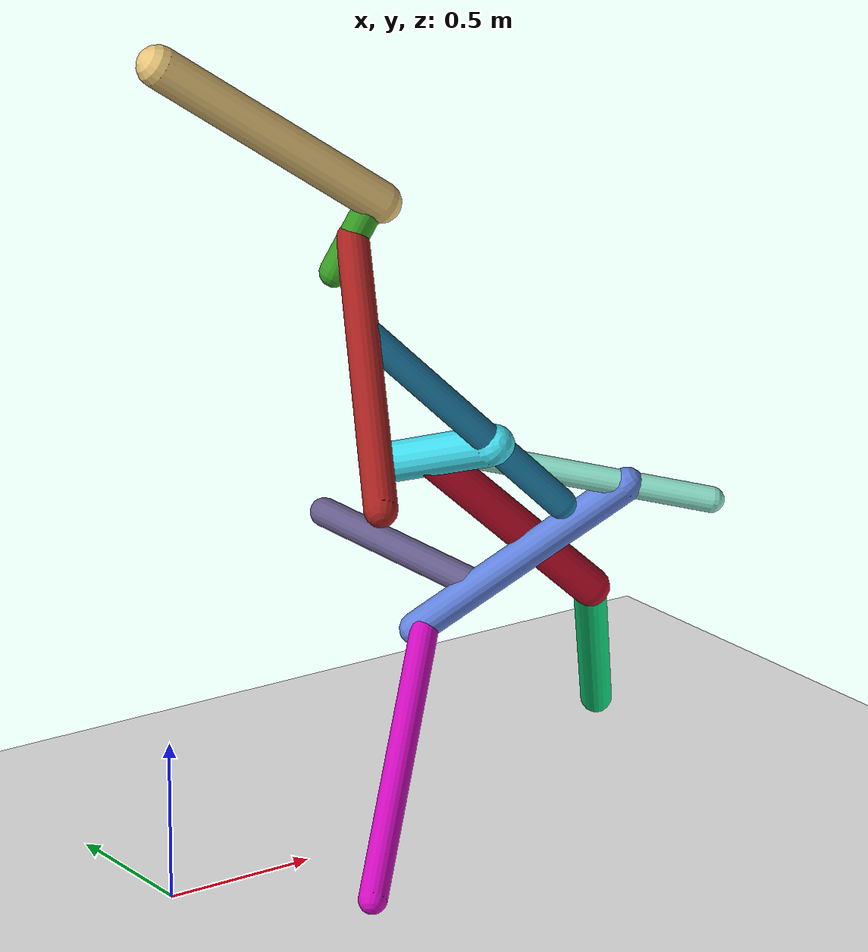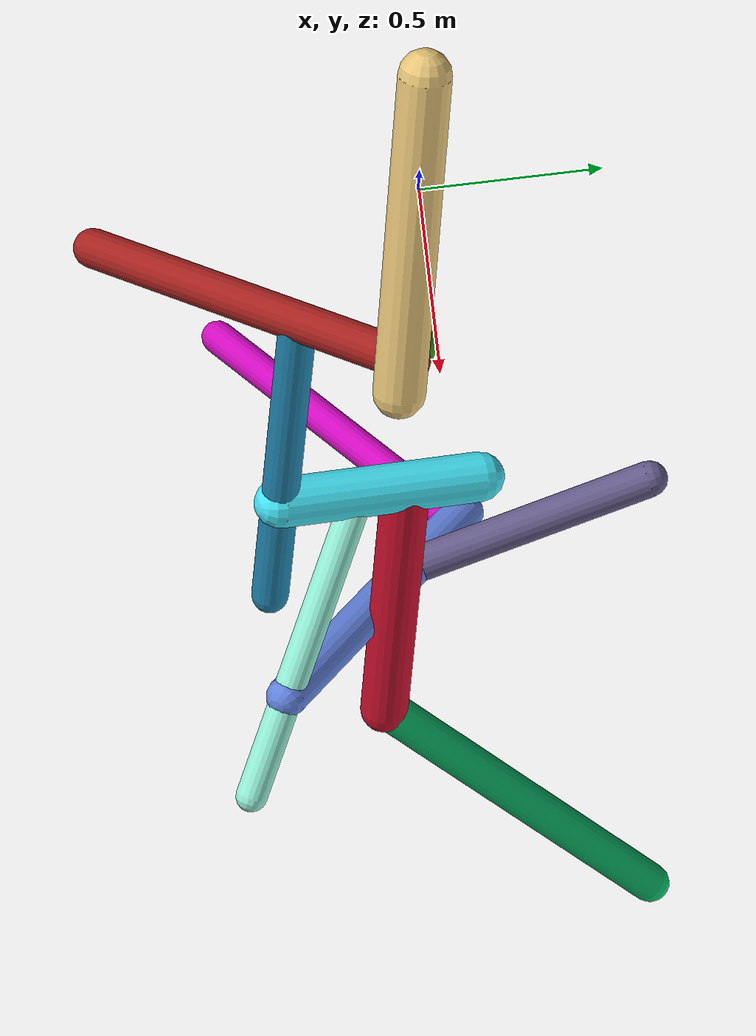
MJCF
<mujoco model="morphology">
  <option timestep="0.01"/>
  <default>
    <default class="/"/>
    <default class="0/"/>
    <default class="0/1/"/>
    <default class="0/1/2/"/>
    <default class="0/1/2/3/"/>
    <default class="0/1/2/3/4/"/>
    <default class="0/1/2/3/4/5/"/>
    <default class="0/1/2/3/4/5/6/"/>
    <default class="0/1/2/3/4/5/6/7/"/>
    <default class="0/1/2/3/4/5/6/8/"/>
    <default class="0/1/2/3/4/9/"/>
    <default class="0/1/2/3/4/9/10/"/>
  </default>
  <asset>
    <texture name="texplane" type="2d" builtin="checker" rgb1="0.10000000000000001 0.20000000000000001 0.29999999999999999" rgb2="0.20000000000000001 0.29999999999999999 0.40000000000000002" width="300" height="300"/>
    <material name="MatPlane" class="/" texture="texplane" texrepeat="20 20" specular="1" shininess="1" reflectance="0.5"/>
  </asset>
  <worldbody>
    <light name="//unnamed_light_0" class="/" directional="true" pos="0 0 1.5" dir="0 0 -1.3" cutoff="100" exponent="1" diffuse="1 1 1" specular="0.10000000000000001 0.10000000000000001 0.10000000000000001"/>
    <geom name="ground" class="/" type="plane" size="15 15 0.5" material="MatPlane" rgba="1 1 1 1"/>
    <site name="body" class="/" size="9.9999999999999995e-07 9.9999999999999995e-07 9.9999999999999995e-07" pos="0 0 2.5966707229614259"/>
    <body pos="0 0 2.5966707229614259" name="0/">
      <freejoint name="0/"/>
      <geom name="0/geom" class="0/" type="capsule" contype="1" conaffinity="1" condim="3" size="0.06404531214741449" rgba="0.9136721372671438 0.7780549169997103 0.47503553248884856 1" friction="0.59999999999999998 0.10000000000000001 0.10000000000000001" fromto="0 0 0 0.68405188652813442 -0.13877306609943441 -0.48014836490651946"/>
      <site name="0/end0" class="0/" size="0.0050000000000000001" pos="0.68405188652813442 -0.13877306609943441 -0.48014836490651946"/>
      <site name="0/attach1" class="0/" size="9.9999999999999995e-07 9.9999999999999995e-07 9.9999999999999995e-07" pos="0.66330792898220925 -0.13456475581131397 -0.46558780671857475"/>
      <body pos="0.66330792898220925 -0.13456475581131397 -0.46558780671857475" name="0/1/">
        <joint name="0/1/joint/" class="0/" type="hinge" axis="0 0 1" limited="true" range="-69.37328020876582 69.37328020876582"/>
        <geom name="0/1/geom" class="0/1/" type="capsule" contype="1" conaffinity="1" condim="3" size="0.046260955291454506" rgba="0.21369873536194228 0.61038730475864378 0.13671549810637196 1" friction="0.59999999999999998 0.10000000000000001 0.10000000000000001" fromto="0 0 0 -0.10405579601210091 0.058106758483740251 -0.22382800519396084"/>
        <site name="0/1/end1" class="0/1/" size="0.0050000000000000001" pos="-0.10405579601210091 0.058106758483740251 -0.22382800519396084"/>
        <site name="0/1/attach2" class="0/1/" size="9.9999999999999995e-07 9.9999999999999995e-07 9.9999999999999995e-07" pos="-0.056186659045509096 0.031375711419150375 -0.12085965697871366"/>
        <body pos="-0.056186659045509096 0.031375711419150375 -0.12085965697871366" name="0/1/2/">
          <joint name="0/1/2/joint/" class="0/1/" type="hinge" axis="-1.1102230246251565e-16 0.96791566771774029 0.25127526775733622" limited="true" range="-57.072743334600474 57.072743334600474"/>
          <geom name="0/1/2/geom" class="0/1/2/" type="capsule" contype="1" conaffinity="1" condim="3" size="0.049612404985557371" rgba="0.65445307545690745 0.13114403811360598 0.12304853035225538 1" friction="0.59999999999999998 0.10000000000000001 0.10000000000000001" fromto="0 0 0 -0.41250434479711129 -0.73867296372581748 -0.56753632396666664"/>
          <site name="0/1/2/end2" class="0/1/2/" size="0.0050000000000000001" pos="-0.41250434479711129 -0.73867296372581748 -0.56753632396666664"/>
          <site name="0/1/2/attach3" class="0/1/2/" size="9.9999999999999995e-07 9.9999999999999995e-07 9.9999999999999995e-07" pos="-0.14257126341784848 -0.25530285685304582 -0.19615398422832725"/>
          <body pos="-0.14257126341784848 -0.25530285685304582 -0.19615398422832725" name="0/1/2/3/">
            <joint name="0/1/2/3/joint/" class="0/1/2/" type="hinge" axis="-5.5511151231257827e-17 -0.60925632806687058 0.7929733455233372" limited="true" range="-65.677885752655655 65.677885752655655"/>
            <geom name="0/1/2/3/geom" class="0/1/2/3/" type="capsule" contype="1" conaffinity="1" condim="3" size="0.046843933901291393" rgba="0.1234788443645104 0.51080113480754807 0.68135328715008459 1" friction="0.59999999999999998 0.10000000000000001 0.10000000000000001" fromto="0 0 0 0.62193010834773066 -0.15111529729478179 -0.61743352774799698"/>
            <site name="0/1/2/3/end3" class="0/1/2/3/" size="0.0050000000000000001" pos="0.62193010834773066 -0.15111529729478179 -0.61743352774799698"/>
            <site name="0/1/2/3/attach4" class="0/1/2/3/" size="9.9999999999999995e-07 9.9999999999999995e-07 9.9999999999999995e-07" pos="0.40852953915830831 -0.099263666342860088 -0.40557585356640524"/>
            <body pos="0.40852953915830831 -0.099263666342860088 -0.40557585356640524" name="0/1/2/3/4/">
              <joint name="0/1/2/3/4/joint/" class="0/1/2/3/" type="hinge" axis="0.71478253163815997 0.16625629149947291 0.67929726777147104" limited="true" range="-32.089178868831787 32.089178868831787"/>
              <geom name="0/1/2/3/4/geom" class="0/1/2/3/4/" type="capsule" contype="1" conaffinity="1" condim="3" size="0.063335190179329315" rgba="0.27223494026546846 0.90228802446647405 0.97664608374320161 1" friction="0.59999999999999998 0.10000000000000001 0.10000000000000001" fromto="0 0 0 -0.016879692483362185 0.50272547372270804 -0.18493063413852817"/>
              <site name="0/1/2/3/4/end4" class="0/1/2/3/4/" size="0.0050000000000000001" pos="-0.016879692483362185 0.50272547372270804 -0.18493063413852817"/>
              <site name="0/1/2/3/4/attach5" class="0/1/2/3/4/" size="9.9999999999999995e-07 9.9999999999999995e-07 9.9999999999999995e-07" pos="-0.0066566144908033476 0.19825299996294674 -0.072928576170054701"/>
              <body pos="-0.0066566144908033476 0.19825299996294674 -0.072928576170054701" name="0/1/2/3/4/5/">
                <joint name="0/1/2/3/4/5/joint/" class="0/1/2/3/4/" type="hinge" axis="-0.99950386893605248 -0.029559736002251313 0.010873729320665076" limited="true" range="-45.842372969811166 45.842372969811166"/>
                <geom name="0/1/2/3/4/5/geom" class="0/1/2/3/4/5/" type="capsule" contype="1" conaffinity="1" condim="3" size="0.04052067894134604" rgba="0.58343876269900041 0.93996072508194051 0.84359919159903463 1" friction="0.59999999999999998 0.10000000000000001 0.10000000000000001" fromto="0 0 0 0.71544539176010336 -0.35558378749163982 -0.19355108904655427"/>
                <site name="0/1/2/3/4/5/end5" class="0/1/2/3/4/5/" size="0.0050000000000000001" pos="0.71544539176010336 -0.35558378749163982 -0.19355108904655427"/>
                <site name="0/1/2/3/4/5/attach6" class="0/1/2/3/4/5/" size="9.9999999999999995e-07 9.9999999999999995e-07 9.9999999999999995e-07" pos="0.47958092496901006 -0.23835669874075519 -0.12974213180036867"/>
                <body pos="0.47958092496901006 -0.23835669874075519 -0.12974213180036867" name="0/1/2/3/4/5/6/">
                  <geom name="0/1/2/3/4/5/6/geom" class="0/1/2/3/4/5/6/" type="capsule" contype="1" conaffinity="1" condim="3" size="0.052555439406033223" rgba="0.38192819504471853 0.51088971305241804 0.8724404648968539 1" friction="0.59999999999999998 0.10000000000000001 0.10000000000000001" fromto="0 0 0 -0.43188300768662718 0.50245404097816548 -0.52992195639930761"/>
                  <site name="0/1/2/3/4/5/6/end6" class="0/1/2/3/4/5/6/" size="0.0050000000000000001" pos="-0.43188300768662718 0.50245404097816548 -0.52992195639930761"/>
                  <site name="0/1/2/3/4/5/6/attach7" class="0/1/2/3/4/5/6/" size="9.9999999999999995e-07 9.9999999999999995e-07 9.9999999999999995e-07" pos="-0.30278685214340223 0.35226317013356651 -0.37152052339193681"/>
                  <body pos="-0.30278685214340223 0.35226317013356651 -0.37152052339193681" name="0/1/2/3/4/5/6/7/">
                    <joint name="0/1/2/3/4/5/6/7/joint/" class="0/1/2/3/4/5/6/" type="hinge" axis="-0.86073717820484141 -0.35025140814124589 0.36939878336432169" limited="true" range="-60.017336873673386 60.017336873673386"/>
                    <geom name="0/1/2/3/4/5/6/7/geom" class="0/1/2/3/4/5/6/7/" type="capsule" contype="1" conaffinity="1" condim="3" size="0.047090369833917844" rgba="0.39588733341545523 0.3607685320135936 0.54050136132468107 1" friction="0.59999999999999998 0.10000000000000001 0.10000000000000001" fromto="0 0 0 -0.1467730358101752 0.62706562671734756 0.094982464470799943"/>
                    <site name="0/1/2/3/4/5/6/7/end7" class="0/1/2/3/4/5/6/7/" size="0.0050000000000000001" pos="-0.1467730358101752 0.62706562671734756 0.094982464470799943"/>
                  </body>
                  <site name="0/1/2/3/4/5/6/attach8" class="0/1/2/3/4/5/6/" size="9.9999999999999995e-07 9.9999999999999995e-07 9.9999999999999995e-07" pos="-0.41098880042009178 0.47814565494014927 -0.50428469122556618"/>
                  <body pos="-0.41098880042009178 0.47814565494014927 -0.50428469122556618" name="0/1/2/3/4/5/6/8/">
                    <joint name="0/1/2/3/4/5/6/8/joint/" class="0/1/2/3/4/5/6/" type="hinge" axis="-0.86073717820484141 -0.35025140814124589 0.36939878336432169" limited="true" range="-51.630738363160589 51.630738363160589"/>
                    <geom name="0/1/2/3/4/5/6/8/geom" class="0/1/2/3/4/5/6/8/" type="capsule" contype="1" conaffinity="1" condim="3" size="0.044381917600552601" rgba="0.82932562010554389 0.040480340789615599 0.76163421625735606 1" friction="0.59999999999999998 0.10000000000000001 0.10000000000000001" fromto="0 0 0 -0.59269465198518367 -0.56236980259750213 -0.5907526748824159"/>
                    <site name="0/1/2/3/4/5/6/8/end8" class="0/1/2/3/4/5/6/8/" size="0.0050000000000000001" pos="-0.59269465198518367 -0.56236980259750213 -0.5907526748824159"/>
                  </body>
                </body>
              </body>
              <site name="0/1/2/3/4/attach9" class="0/1/2/3/4/" size="9.9999999999999995e-07 9.9999999999999995e-07 9.9999999999999995e-07" pos="-0.010615385955280641 0.31615652585957921 -0.1163001078526907"/>
              <body pos="-0.010615385955280641 0.31615652585957921 -0.1163001078526907" name="0/1/2/3/4/9/">
                <joint name="0/1/2/3/4/9/joint/" class="0/1/2/3/4/" type="hinge" axis="5.5511151231257827e-17 0.34523847015876563 0.9385149965357158" limited="true" range="-44.857288610421847 44.857288610421847"/>
                <geom name="0/1/2/3/4/9/geom" class="0/1/2/3/4/9/" type="capsule" contype="1" conaffinity="1" condim="3" size="0.061610231359611689" rgba="0.77289766672934612 0.055036631932471436 0.16999913416302836 1" friction="0.59999999999999998 0.10000000000000001 0.10000000000000001" fromto="0 0 0 0.53269064103857033 -0.11620117080376602 -0.49963120635710884"/>
                <site name="0/1/2/3/4/9/end9" class="0/1/2/3/4/9/" size="0.0050000000000000001" pos="0.53269064103857033 -0.11620117080376602 -0.49963120635710884"/>
                <site name="0/1/2/3/4/9/attach10" class="0/1/2/3/4/9/" size="9.9999999999999995e-07 9.9999999999999995e-07 9.9999999999999995e-07" pos="0.52976383410487327 -0.11556271695042049 -0.49688604065228931"/>
                <body pos="0.52976383410487327 -0.11556271695042049 -0.49688604065228931" name="0/1/2/3/4/9/10/">
                  <geom name="0/1/2/3/4/9/10/geom" class="0/1/2/3/4/9/10/" type="capsule" contype="1" conaffinity="1" condim="3" size="0.051986085850545441" rgba="0.049484535813776875 0.8002790720654418 0.45526183963716449 1" friction="0.59999999999999998 0.10000000000000001 0.10000000000000001" fromto="0 0 0 0.5329004104130004 0.65107758769917612 -0.69530730090315784"/>
                  <site name="0/1/2/3/4/9/10/end10" class="0/1/2/3/4/9/10/" size="0.0050000000000000001" pos="0.5329004104130004 0.65107758769917612 -0.69530730090315784"/>
                </body>
              </body>
            </body>
          </body>
        </body>
      </body>
      <camera name="0/iso" class="0/" mode="trackcom" pos="-2.2999999999999998 -2.2999999999999998 1" xyaxes="0.45000000000000001 -0.45000000000000001 0 0.29999999999999999 0.14999999999999999 0.93999999999999995"/>
    </body>
  </worldbody>
  <actuator>
    <motor name="0/1/motor" class="0/1/" ctrllimited="true" ctrlrange="-1 1" gear="92" joint="0/1/joint/"/>
    <motor name="0/1/2/motor" class="0/1/2/" ctrllimited="true" ctrlrange="-1 1" gear="76" joint="0/1/2/joint/"/>
    <motor name="0/1/2/3/motor" class="0/1/2/3/" ctrllimited="true" ctrlrange="-1 1" gear="52" joint="0/1/2/3/joint/"/>
    <motor name="0/1/2/3/4/motor" class="0/1/2/3/4/" ctrllimited="true" ctrlrange="-1 1" gear="96" joint="0/1/2/3/4/joint/"/>
    <motor name="0/1/2/3/4/5/motor" class="0/1/2/3/4/5/" ctrllimited="true" ctrlrange="-1 1" gear="99" joint="0/1/2/3/4/5/joint/"/>
    <motor name="0/1/2/3/4/5/6/7/motor" class="0/1/2/3/4/5/6/7/" ctrllimited="true" ctrlrange="-1 1" gear="55" joint="0/1/2/3/4/5/6/7/joint/"/>
    <motor name="0/1/2/3/4/5/6/8/motor" class="0/1/2/3/4/5/6/8/" ctrllimited="true" ctrlrange="-1 1" gear="68" joint="0/1/2/3/4/5/6/8/joint/"/>
    <motor name="0/1/2/3/4/9/motor" class="0/1/2/3/4/9/" ctrllimited="true" ctrlrange="-1 1" gear="90" joint="0/1/2/3/4/9/joint/"/>
  </actuator>
  <sensor>
    <subtreelinvel name="velocity" body="0/"/>
  </sensor>
</mujoco>
